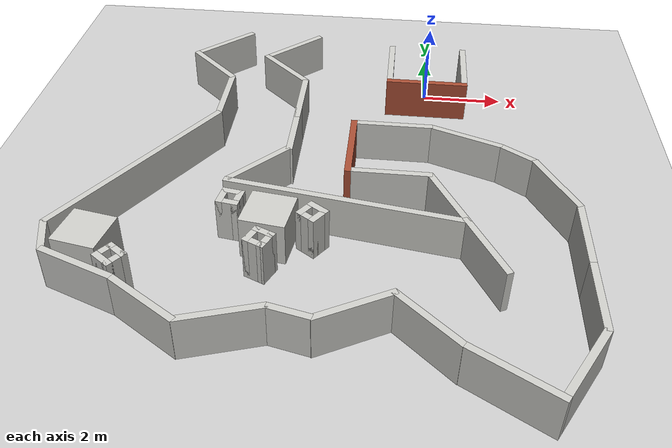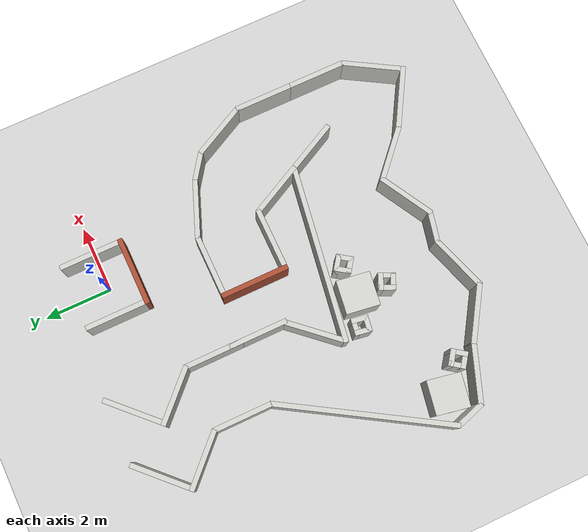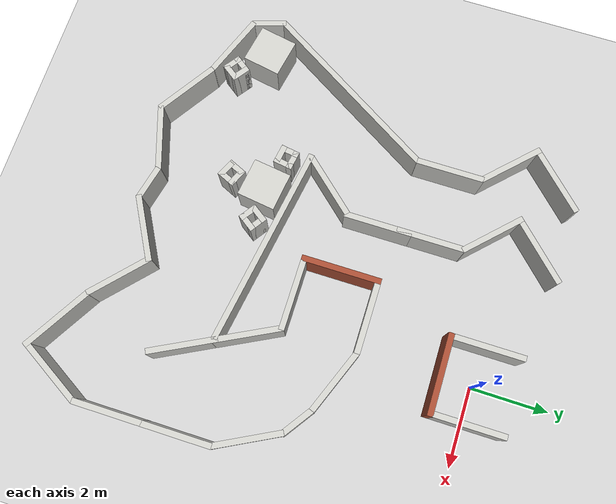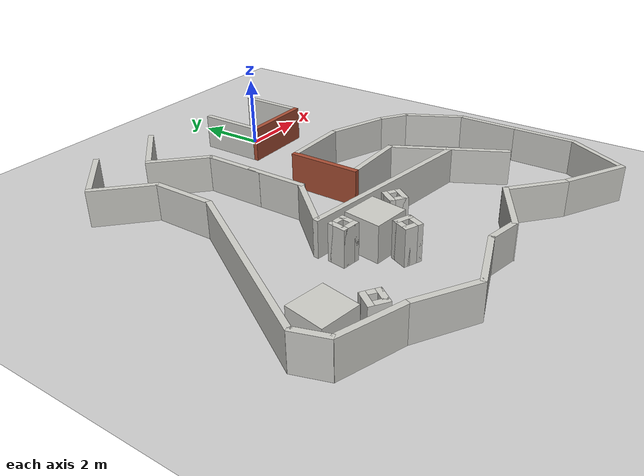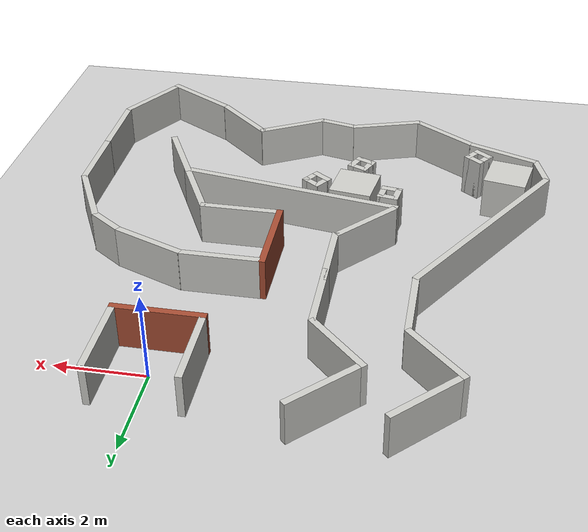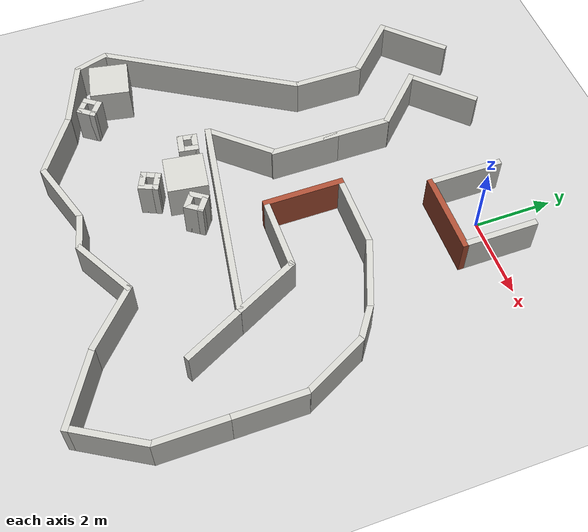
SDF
<sdf version="1.6">
 <world name="default">
  <model name="ground_plane">
   <static>1</static>
   <link name="link">
    <collision name="collision">
     <geometry><plane><normal>0 0 1</normal><size>100 100</size></plane></geometry>
     <surface><friction><ode><mu>100</mu><mu2>50</mu2></ode></friction></surface>
    </collision>
    <visual name="visual">
     <cast_shadows>0</cast_shadows>
     <geometry><plane><normal>0 0 1</normal><size>100 100</size></plane></geometry>
     <material>
      <script><uri>file://media/materials/scripts/concrete.material</uri><name>Concrete/1</name></script>
     </material>
    </visual>
   </link>
  </model>
  <model name="obstacle_wall_full_clone_0">
   <static>1</static>
   <pose>-5.51299 0.694344 0 0 0 -2.35619</pose>
   <link name="Wall">
    <collision name="Wall_Collision">
     <geometry><box><size>1.75 0.15 1</size></box></geometry>
     <pose>0 0 0.5 0 -0 0</pose>
    </collision>
    <visual name="Wall_Visual">
     <pose>0 0 0.5 0 -0 0</pose>
     <geometry><box><size>1.75 0.15 1</size></box></geometry>
     <material>
      <script><uri>file://media/materials/scripts/gazebo.material</uri><name>Gazebo/CeilingTiled</name></script>
      <ambient>1 0.764706 0.305882 1</ambient>
     </material>
    </visual>
   </link>
  </model>
  <model name="obstacle_wall_full_clone_0_clone">
   <static>1</static>
   <pose>-3.59715 0.686354 0 0 0 -2.35619</pose>
   <link name="Wall">
    <collision name="Wall_Collision">
     <geometry><box><size>1.75 0.15 1</size></box></geometry>
     <pose>0 0 0.5 0 -0 0</pose>
    </collision>
    <visual name="Wall_Visual">
     <pose>0 0 0.5 0 -0 0</pose>
     <geometry><box><size>1.75 0.15 1</size></box></geometry>
     <material>
      <script><uri>file://media/materials/scripts/gazebo.material</uri><name>Gazebo/CeilingTiled</name></script>
      <ambient>1 0.764706 0.305882 1</ambient>
     </material>
    </visual>
   </link>
  </model>
  <model name="obstacle_wall_full_clone_1">
   <static>1</static>
   <pose>-3.69711 -0.544465 0 0 0 -0.785398</pose>
   <link name="Wall">
    <collision name="Wall_Collision">
     <geometry><box><size>1.75 0.15 1</size></box></geometry>
     <pose>0 0 0.5 0 -0 0</pose>
    </collision>
    <visual name="Wall_Visual">
     <pose>0 0 0.5 0 -0 0</pose>
     <geometry><box><size>1.75 0.15 1</size></box></geometry>
     <material>
      <script><uri>file://media/materials/scripts/gazebo.material</uri><name>Gazebo/CeilingTiled</name></script>
      <ambient>1 0.764706 0.305882 1</ambient>
     </material>
    </visual>
   </link>
  </model>
  <model name="obstacle_wall_full_clone_2">
   <static>1</static>
   <pose>-5.6187 -0.542924 0 0 0 -0.785398</pose>
   <link name="Wall">
    <collision name="Wall_Collision">
     <geometry><box><size>1.75 0.15 1</size></box></geometry>
     <pose>0 0 0.5 0 -0 0</pose>
    </collision>
    <visual name="Wall_Visual">
     <pose>0 0 0.5 0 -0 0</pose>
     <geometry><box><size>1.75 0.15 1</size></box></geometry>
     <material>
      <script><uri>file://media/materials/scripts/gazebo.material</uri><name>Gazebo/CeilingTiled</name></script>
      <ambient>1 0.764706 0.305882 1</ambient>
     </material>
    </visual>
   </link>
  </model>
  <model name="track_straight_4">
   <static>1</static>
   <pose>-4.06097 -1.98727 0 0 -0 0</pose>
   <link name="Wall_1">
    <collision name="Wall_1_Collision">
     <geometry><box><size>1.75 0.15 1</size></box></geometry>
     <pose>0 0 0.5 0 -0 0</pose>
    </collision>
    <visual name="Wall_1_Visual">
     <pose>0 0 0.5 0 -0 0</pose>
     <geometry><box><size>1.75 0.15 1</size></box></geometry>
     <material>
      <script><uri>file://media/materials/scripts/gazebo.material</uri><name>Gazebo/CeilingTiled</name></script>
      <ambient>1 0.764706 0.305882 1</ambient>
     </material>
    </visual>
    <pose>-0.955 0.002 0 0 0 -1.5708</pose>
   </link>
   <link name="Wall_2">
    <collision name="Wall_2_Collision">
     <geometry><box><size>1.75 0.15 1</size></box></geometry>
     <pose>0 0 0.5 0 -0 0</pose>
    </collision>
    <visual name="Wall_2_Visual">
     <pose>0 0 0.5 0 -0 0</pose>
     <geometry><box><size>1.75 0.15 1</size></box></geometry>
     <material>
      <script><uri>file://media/materials/scripts/gazebo.material</uri><name>Gazebo/CeilingTiled</name></script>
      <ambient>1 0.764706 0.305882 1</ambient>
     </material>
    </visual>
    <pose>0.955 0.002 0 0 0 -1.5708</pose>
   </link>
  </model>
  <model name="track_wall_3">
   <static>1</static>
   <pose>-1.76727 -5.89244 0 0 0 -0.16061</pose>
   <link name="Wall">
    <collision name="Wall_Collision">
     <geometry><box><size>5.25 0.15 1</size></box></geometry>
     <pose>0 0 0.5 0 -0 0</pose>
    </collision>
    <visual name="Wall_Visual">
     <pose>0 0 0.5 0 -0 0</pose>
     <geometry><box><size>5.25 0.15 1</size></box></geometry>
     <material>
      <script><uri>file://media/materials/scripts/gazebo.material</uri><name>Gazebo/CeilingTiled</name></script>
      <ambient>1 0.764706 0.305882 1</ambient>
     </material>
    </visual>
   </link>
  </model>
  <model name="obstacle_wall_full_0">
   <static>1</static>
   <pose>3.19645 -8.15465 0 0 -0 1.5708</pose>
   <link name="Wall">
    <collision name="Wall_Collision">
     <geometry><box><size>1.75 0.15 1</size></box></geometry>
     <pose>0 0 0.5 0 -0 0</pose>
    </collision>
    <visual name="Wall_Visual">
     <pose>0 0 0.5 0 -0 0</pose>
     <geometry><box><size>1.75 0.15 1</size></box></geometry>
     <material>
      <script><uri>file://media/materials/scripts/gazebo.material</uri><name>Gazebo/CeilingTiled</name></script>
      <ambient>1 0.764706 0.305882 1</ambient>
     </material>
    </visual>
   </link>
  </model>
  <model name="track_corner_5">
   <static>1</static>
   <pose>1.96218 -9.35253 0 0 -0 2.60672</pose>
   <link name="Wall_1">
    <collision name="Wall_1_Collision">
     <geometry><box><size>1.75 0.15 1</size></box></geometry>
     <pose>0 0 0.5 0 -0 0</pose>
    </collision>
    <visual name="Wall_1_Visual">
     <pose>0 0 0.5 0 -0 0</pose>
     <geometry><box><size>1.75 0.15 1</size></box></geometry>
     <material>
      <script><uri>file://media/materials/scripts/gazebo.material</uri><name>Gazebo/CeilingTiled</name></script>
      <ambient>1 0.764706 0.305882 1</ambient>
     </material>
    </visual>
    <pose>-0.882493 -0.073007 0 0 0 -1.5708</pose>
   </link>
   <link name="Wall_2">
    <collision name="Wall_2_Collision">
     <geometry><box><size>1.91042 0.15 1</size></box></geometry>
     <pose>0 0 0.5 0 -0 0</pose>
    </collision>
    <visual name="Wall_2_Visual">
     <pose>0 0 0.5 0 -0 0</pose>
     <geometry><box><size>1.91042 0.15 1</size></box></geometry>
     <material>
      <script><uri>file://media/materials/scripts/gazebo.material</uri><name>Gazebo/CeilingTiled</name></script>
      <ambient>1 0.764706 0.305882 1</ambient>
     </material>
    </visual>
    <pose>-0.002284 0.876825 0 0 -0 3.1414</pose>
   </link>
  </model>
  <model name="obstacle_wall_full_1">
   <static>1</static>
   <pose>0.060788 -9.04545 0 0 0 -0.743151</pose>
   <link name="Wall">
    <collision name="Wall_Collision">
     <geometry><box><size>1.75 0.15 1</size></box></geometry>
     <pose>0 0 0.5 0 -0 0</pose>
    </collision>
    <visual name="Wall_Visual">
     <pose>0 0 0.5 0 -0 0</pose>
     <geometry><box><size>1.75 0.15 1</size></box></geometry>
     <material>
      <script><uri>file://media/materials/scripts/gazebo.material</uri><name>Gazebo/CeilingTiled</name></script>
      <ambient>1 0.764706 0.305882 1</ambient>
     </material>
    </visual>
   </link>
  </model>
  <model name="obstacle_wall_full_2">
   <static>1</static>
   <pose>-3.70961 -4.80867 0 0 -0 0.840666</pose>
   <link name="Wall">
    <collision name="Wall_Collision">
     <geometry><box><size>1.75 0.15 1</size></box></geometry>
     <pose>0 0 0.5 0 -0 0</pose>
    </collision>
    <visual name="Wall_Visual">
     <pose>0 0 0.5 0 -0 0</pose>
     <geometry><box><size>1.75 0.15 1</size></box></geometry>
     <material>
      <script><uri>file://media/materials/scripts/gazebo.material</uri><name>Gazebo/CeilingTiled</name></script>
      <ambient>1 0.764706 0.305882 1</ambient>
     </material>
    </visual>
   </link>
  </model>
  <model name="obstacle_wall_full_4">
   <static>1</static>
   <pose>-3.10411 -3.34624 0 0 0 -1.5708</pose>
   <link name="Wall">
    <collision name="Wall_Collision">
     <geometry><box><size>1.75 0.15 1</size></box></geometry>
     <pose>0 0 0.5 0 -0 0</pose>
    </collision>
    <visual name="Wall_Visual">
     <pose>0 0 0.5 0 -0 0</pose>
     <geometry><box><size>1.75 0.15 1</size></box></geometry>
     <material>
      <script><uri>file://media/materials/scripts/gazebo.material</uri><name>Gazebo/CeilingTiled</name></script>
      <ambient>1 0.764706 0.305882 1</ambient>
     </material>
    </visual>
   </link>
  </model>
  <model name="track_wall_3_2">
   <static>1</static>
   <pose>-6.36344 -5.07041 0 0 -0 1.02375</pose>
   <link name="Wall">
    <collision name="Wall_Collision">
     <geometry><box><size>5.25 0.15 1</size></box></geometry>
     <pose>0 0 0.5 0 -0 0</pose>
    </collision>
    <visual name="Wall_Visual">
     <pose>0 0 0.5 0 -0 0</pose>
     <geometry><box><size>5.25 0.15 1</size></box></geometry>
     <material>
      <script><uri>file://media/materials/scripts/gazebo.material</uri><name>Gazebo/CeilingTiled</name></script>
      <ambient>1 0.764706 0.305882 1</ambient>
     </material>
    </visual>
   </link>
  </model>
  <model name="obstacle_squarepillar_medium">
   <static>1</static>
   <pose>-4.09924 -6.06753 0 0 0 -0.15833</pose>
   <link name="Wall_1">
    <collision name="Wall_1_Collision">
     <geometry><box><size>0.5 0.15 1</size></box></geometry>
     <pose>0 0 0.5 0 -0 0</pose>
    </collision>
    <visual name="Wall_1_Visual">
     <pose>0 0 0.5 0 -0 0</pose>
     <geometry><box><size>0.5 0.15 1</size></box></geometry>
     <material>
      <script><uri>file://media/materials/scripts/gazebo.material</uri><name>Gazebo/CeilingTiled</name></script>
      <ambient>1 0.764706 0.305882 1</ambient>
     </material>
    </visual>
    <pose>-0.175 0 0 0 0 -1.5708</pose>
   </link>
   <link name="Wall_2">
    <collision name="Wall_2_Collision">
     <geometry><box><size>0.5 0.15 1</size></box></geometry>
     <pose>0 0 0.5 0 -0 0</pose>
    </collision>
    <visual name="Wall_2_Visual">
     <pose>0 0 0.5 0 -0 0</pose>
     <geometry><box><size>0.5 0.15 1</size></box></geometry>
     <material>
      <script><uri>file://media/materials/scripts/gazebo.material</uri><name>Gazebo/CeilingTiled</name></script>
      <ambient>1 0.764706 0.305882 1</ambient>
     </material>
    </visual>
    <pose>0 -0.175 0 0 -0 0</pose>
   </link>
   <link name="Wall_3">
    <collision name="Wall_3_Collision">
     <geometry><box><size>0.5 0.15 1</size></box></geometry>
     <pose>0 0 0.5 0 -0 0</pose>
    </collision>
    <visual name="Wall_3_Visual">
     <pose>0 0 0.5 0 -0 0</pose>
     <geometry><box><size>0.5 0.15 1</size></box></geometry>
     <material>
      <script><uri>file://media/materials/scripts/gazebo.material</uri><name>Gazebo/CeilingTiled</name></script>
      <ambient>1 0.764706 0.305882 1</ambient>
     </material>
    </visual>
    <pose>0.175 0 0 0 -0 1.5708</pose>
   </link>
   <link name="Wall_4">
    <collision name="Wall_4_Collision">
     <geometry><box><size>0.5 0.15 1</size></box></geometry>
     <pose>0 0 0.5 0 -0 0</pose>
    </collision>
    <visual name="Wall_4_Visual">
     <pose>0 0 0.5 0 -0 0</pose>
     <geometry><box><size>0.5 0.15 1</size></box></geometry>
     <material>
      <script><uri>file://media/materials/scripts/gazebo.material</uri><name>Gazebo/CeilingTiled</name></script>
      <ambient>1 0.764706 0.305882 1</ambient>
     </material>
    </visual>
    <pose>0 0.175 0 0 -0 3.14159</pose>
   </link>
  </model>
  <model name="obstacle_squarepillar_large">
   <pose>-3.23575 -6.38473 0 0 0 -0.139844</pose>
   <link name="Pillar">
    <collision name="Pillar_Collision">
     <geometry><box><size>1 1 1</size></box></geometry>
     <pose>0 0 0.5 0 -0 0</pose>
    </collision>
    <visual name="Pillar_Visual">
     <pose>0 0 0.5 0 -0 0</pose>
     <geometry><box><size>1 1 1</size></box></geometry>
     <material>
      <script><uri>file://media/materials/scripts/gazebo.material</uri><name>Gazebo/CeilingTiled</name></script>
      <ambient>1 0.764706 0.305882 1</ambient>
     </material>
    </visual>
   </link>
   <static>1</static>
  </model>
  <model name="obstacle_squarepillar_medium_clone">
   <static>1</static>
   <pose>-3.28236 -7.26643 0 0 0 -0.42369</pose>
   <link name="Wall_1">
    <collision name="Wall_1_Collision">
     <geometry><box><size>0.5 0.15 1</size></box></geometry>
     <pose>0 0 0.5 0 -0 0</pose>
    </collision>
    <visual name="Wall_1_Visual">
     <pose>0 0 0.5 0 -0 0</pose>
     <geometry><box><size>0.5 0.15 1</size></box></geometry>
     <material>
      <script><uri>file://media/materials/scripts/gazebo.material</uri><name>Gazebo/CeilingTiled</name></script>
      <ambient>1 0.764706 0.305882 1</ambient>
     </material>
    </visual>
    <pose>-0.175 0 0 0 0 -1.5708</pose>
   </link>
   <link name="Wall_2">
    <collision name="Wall_2_Collision">
     <geometry><box><size>0.5 0.15 1</size></box></geometry>
     <pose>0 0 0.5 0 -0 0</pose>
    </collision>
    <visual name="Wall_2_Visual">
     <pose>0 0 0.5 0 -0 0</pose>
     <geometry><box><size>0.5 0.15 1</size></box></geometry>
     <material>
      <script><uri>file://media/materials/scripts/gazebo.material</uri><name>Gazebo/CeilingTiled</name></script>
      <ambient>1 0.764706 0.305882 1</ambient>
     </material>
    </visual>
    <pose>0 -0.175 0 0 -0 0</pose>
   </link>
   <link name="Wall_3">
    <collision name="Wall_3_Collision">
     <geometry><box><size>0.5 0.15 1</size></box></geometry>
     <pose>0 0 0.5 0 -0 0</pose>
    </collision>
    <visual name="Wall_3_Visual">
     <pose>0 0 0.5 0 -0 0</pose>
     <geometry><box><size>0.5 0.15 1</size></box></geometry>
     <material>
      <script><uri>file://media/materials/scripts/gazebo.material</uri><name>Gazebo/CeilingTiled</name></script>
      <ambient>1 0.764706 0.305882 1</ambient>
     </material>
    </visual>
    <pose>0.175 0 0 0 -0 1.5708</pose>
   </link>
   <link name="Wall_4">
    <collision name="Wall_4_Collision">
     <geometry><box><size>0.5 0.15 1</size></box></geometry>
     <pose>0 0 0.5 0 -0 0</pose>
    </collision>
    <visual name="Wall_4_Visual">
     <pose>0 0 0.5 0 -0 0</pose>
     <geometry><box><size>0.5 0.15 1</size></box></geometry>
     <material>
      <script><uri>file://media/materials/scripts/gazebo.material</uri><name>Gazebo/CeilingTiled</name></script>
      <ambient>1 0.764706 0.305882 1</ambient>
     </material>
    </visual>
    <pose>0 0.175 0 0 -0 3.14159</pose>
   </link>
  </model>
  <model name="obstacle_squarepillar_medium_clone_0">
   <static>1</static>
   <pose>-2.31446 -6.37857 0 0 0 -0.61349</pose>
   <link name="Wall_1">
    <collision name="Wall_1_Collision">
     <geometry><box><size>0.5 0.15 1</size></box></geometry>
     <pose>0 0 0.5 0 -0 0</pose>
    </collision>
    <visual name="Wall_1_Visual">
     <pose>0 0 0.5 0 -0 0</pose>
     <geometry><box><size>0.5 0.15 1</size></box></geometry>
     <material>
      <script><uri>file://media/materials/scripts/gazebo.material</uri><name>Gazebo/CeilingTiled</name></script>
      <ambient>1 0.764706 0.305882 1</ambient>
     </material>
    </visual>
    <pose>-0.175 0 0 0 0 -1.5708</pose>
   </link>
   <link name="Wall_2">
    <collision name="Wall_2_Collision">
     <geometry><box><size>0.5 0.15 1</size></box></geometry>
     <pose>0 0 0.5 0 -0 0</pose>
    </collision>
    <visual name="Wall_2_Visual">
     <pose>0 0 0.5 0 -0 0</pose>
     <geometry><box><size>0.5 0.15 1</size></box></geometry>
     <material>
      <script><uri>file://media/materials/scripts/gazebo.material</uri><name>Gazebo/CeilingTiled</name></script>
      <ambient>1 0.764706 0.305882 1</ambient>
     </material>
    </visual>
    <pose>0 -0.175 0 0 -0 0</pose>
   </link>
   <link name="Wall_3">
    <collision name="Wall_3_Collision">
     <geometry><box><size>0.5 0.15 1</size></box></geometry>
     <pose>0 0 0.5 0 -0 0</pose>
    </collision>
    <visual name="Wall_3_Visual">
     <pose>0 0 0.5 0 -0 0</pose>
     <geometry><box><size>0.5 0.15 1</size></box></geometry>
     <material>
      <script><uri>file://media/materials/scripts/gazebo.material</uri><name>Gazebo/CeilingTiled</name></script>
      <ambient>1 0.764706 0.305882 1</ambient>
     </material>
    </visual>
    <pose>0.175 0 0 0 -0 1.5708</pose>
   </link>
   <link name="Wall_4">
    <collision name="Wall_4_Collision">
     <geometry><box><size>0.5 0.15 1</size></box></geometry>
     <pose>0 0 0.5 0 -0 0</pose>
    </collision>
    <visual name="Wall_4_Visual">
     <pose>0 0 0.5 0 -0 0</pose>
     <geometry><box><size>0.5 0.15 1</size></box></geometry>
     <material>
      <script><uri>file://media/materials/scripts/gazebo.material</uri><name>Gazebo/CeilingTiled</name></script>
      <ambient>1 0.764706 0.305882 1</ambient>
     </material>
    </visual>
    <pose>0 0.175 0 0 -0 3.14159</pose>
   </link>
  </model>
  <model name="obstacle_wall_full_5">
   <static>1</static>
   <pose>-5.14845 -9.15212 0 0 0 -0.576358</pose>
   <link name="Wall">
    <collision name="Wall_Collision">
     <geometry><box><size>1.75 0.15 1</size></box></geometry>
     <pose>0 0 0.5 0 -0 0</pose>
    </collision>
    <visual name="Wall_Visual">
     <pose>0 0 0.5 0 -0 0</pose>
     <geometry><box><size>1.75 0.15 1</size></box></geometry>
     <material>
      <script><uri>file://media/materials/scripts/gazebo.material</uri><name>Gazebo/CeilingTiled</name></script>
      <ambient>1 0.764706 0.305882 1</ambient>
     </material>
    </visual>
   </link>
  </model>
  <model name="obstacle_wall_full_6">
   <static>1</static>
   <pose>-1.26105 -8.89096 0 0 -0 0.505836</pose>
   <link name="Wall">
    <collision name="Wall_Collision">
     <geometry><box><size>1.75 0.15 1</size></box></geometry>
     <pose>0 0 0.5 0 -0 0</pose>
    </collision>
    <visual name="Wall_Visual">
     <pose>0 0 0.5 0 -0 0</pose>
     <geometry><box><size>1.75 0.15 1</size></box></geometry>
     <material>
      <script><uri>file://media/materials/scripts/gazebo.material</uri><name>Gazebo/CeilingTiled</name></script>
      <ambient>1 0.764706 0.305882 1</ambient>
     </material>
    </visual>
   </link>
  </model>
  <model name="obstacle_wall_full_7">
   <static>1</static>
   <pose>-6.67037 -8.37819 0 0 0 -0.363687</pose>
   <link name="Wall">
    <collision name="Wall_Collision">
     <geometry><box><size>1.75 0.15 1</size></box></geometry>
     <pose>0 0 0.5 0 -0 0</pose>
    </collision>
    <visual name="Wall_Visual">
     <pose>0 0 0.5 0 -0 0</pose>
     <geometry><box><size>1.75 0.15 1</size></box></geometry>
     <material>
      <script><uri>file://media/materials/scripts/gazebo.material</uri><name>Gazebo/CeilingTiled</name></script>
      <ambient>1 0.764706 0.305882 1</ambient>
     </material>
    </visual>
   </link>
  </model>
  <model name="obstacle_wall_short">
   <static>1</static>
   <pose>-7.58394 -7.68135 0 0 0 -1.26636</pose>
   <link name="Wall">
    <collision name="Wall_Collision">
     <geometry><box><size>0.9 0.15 1</size></box></geometry>
     <pose>0 0 0.5 0 -0 0</pose>
    </collision>
    <visual name="Wall_Visual">
     <pose>0 0 0.5 0 -0 0</pose>
     <geometry><box><size>0.9 0.15 1</size></box></geometry>
     <material>
      <script><uri>file://media/materials/scripts/gazebo.material</uri><name>Gazebo/CeilingTiled</name></script>
      <ambient>1 0.764706 0.305882 1</ambient>
     </material>
    </visual>
   </link>
  </model>
  <model name="obstacle_squarepillar_large_0">
   <pose>-6.82115 -7.40469 0 0 0 -0.18589</pose>
   <link name="Pillar">
    <collision name="Pillar_Collision">
     <geometry><box><size>1 1 1</size></box></geometry>
     <pose>0 0 0.5 0 -0 0</pose>
    </collision>
    <visual name="Pillar_Visual">
     <pose>0 0 0.5 0 -0 0</pose>
     <geometry><box><size>1 1 1</size></box></geometry>
     <material>
      <script><uri>file://media/materials/scripts/gazebo.material</uri><name>Gazebo/CeilingTiled</name></script>
      <ambient>1 0.764706 0.305882 1</ambient>
     </material>
    </visual>
   </link>
   <static>1</static>
  </model>
  <model name="obstacle_squarepillar_medium_clone_1">
   <static>1</static>
   <pose>-6.07379 -8.0919 0 0 0 -0.6325</pose>
   <link name="Wall_1">
    <collision name="Wall_1_Collision">
     <geometry><box><size>0.5 0.15 1</size></box></geometry>
     <pose>0 0 0.5 0 -0 0</pose>
    </collision>
    <visual name="Wall_1_Visual">
     <pose>0 0 0.5 0 -0 0</pose>
     <geometry><box><size>0.5 0.15 1</size></box></geometry>
     <material>
      <script><uri>file://media/materials/scripts/gazebo.material</uri><name>Gazebo/CeilingTiled</name></script>
      <ambient>1 0.764706 0.305882 1</ambient>
     </material>
    </visual>
    <pose>-0.175 0 0 0 0 -1.5708</pose>
   </link>
   <link name="Wall_2">
    <collision name="Wall_2_Collision">
     <geometry><box><size>0.5 0.15 1</size></box></geometry>
     <pose>0 0 0.5 0 -0 0</pose>
    </collision>
    <visual name="Wall_2_Visual">
     <pose>0 0 0.5 0 -0 0</pose>
     <geometry><box><size>0.5 0.15 1</size></box></geometry>
     <material>
      <script><uri>file://media/materials/scripts/gazebo.material</uri><name>Gazebo/CeilingTiled</name></script>
      <ambient>1 0.764706 0.305882 1</ambient>
     </material>
    </visual>
    <pose>0 -0.175 0 0 -0 0</pose>
   </link>
   <link name="Wall_3">
    <collision name="Wall_3_Collision">
     <geometry><box><size>0.5 0.15 1</size></box></geometry>
     <pose>0 0 0.5 0 -0 0</pose>
    </collision>
    <visual name="Wall_3_Visual">
     <pose>0 0 0.5 0 -0 0</pose>
     <geometry><box><size>0.5 0.15 1</size></box></geometry>
     <material>
      <script><uri>file://media/materials/scripts/gazebo.material</uri><name>Gazebo/CeilingTiled</name></script>
      <ambient>1 0.764706 0.305882 1</ambient>
     </material>
    </visual>
    <pose>0.175 0 0 0 -0 1.5708</pose>
   </link>
   <link name="Wall_4">
    <collision name="Wall_4_Collision">
     <geometry><box><size>0.5 0.15 1</size></box></geometry>
     <pose>0 0 0.5 0 -0 0</pose>
    </collision>
    <visual name="Wall_4_Visual">
     <pose>0 0 0.5 0 -0 0</pose>
     <geometry><box><size>0.5 0.15 1</size></box></geometry>
     <material>
      <script><uri>file://media/materials/scripts/gazebo.material</uri><name>Gazebo/CeilingTiled</name></script>
      <ambient>1 0.764706 0.305882 1</ambient>
     </material>
    </visual>
    <pose>0 0.175 0 0 -0 3.14159</pose>
   </link>
  </model>
  <model name="obstacle_wall_full_8">
   <static>1</static>
   <pose>-3.6459 -9.34833 0 0 -0 0.312283</pose>
   <link name="Wall">
    <collision name="Wall_Collision">
     <geometry><box><size>1.75 0.15 1</size></box></geometry>
     <pose>0 0 0.5 0 -0 0</pose>
    </collision>
    <visual name="Wall_Visual">
     <pose>0 0 0.5 0 -0 0</pose>
     <geometry><box><size>1.75 0.15 1</size></box></geometry>
     <material>
      <script><uri>file://media/materials/scripts/gazebo.material</uri><name>Gazebo/CeilingTiled</name></script>
      <ambient>1 0.764706 0.305882 1</ambient>
     </material>
    </visual>
   </link>
  </model>
  <model name="obstacle_wall_short_0">
   <static>1</static>
   <pose>-2.41375 -9.18902 0 0 0 -0.227758</pose>
   <link name="Wall">
    <collision name="Wall_Collision">
     <geometry><box><size>0.9 0.15 1</size></box></geometry>
     <pose>0 0 0.5 0 -0 0</pose>
    </collision>
    <visual name="Wall_Visual">
     <pose>0 0 0.5 0 -0 0</pose>
     <geometry><box><size>0.9 0.15 1</size></box></geometry>
     <material>
      <script><uri>file://media/materials/scripts/gazebo.material</uri><name>Gazebo/CeilingTiled</name></script>
      <ambient>1 0.764706 0.305882 1</ambient>
     </material>
    </visual>
   </link>
  </model>
  <model name="track_end">
   <static>1</static>
   <pose>0 3e-06 0 0 -0 3.14159</pose>
   <link name="Wall_1">
    <collision name="Wall_1_Collision">
     <geometry><box><size>1.8 0.15 1</size></box></geometry>
     <pose>0 0 0.5 0 -0 0</pose>
    </collision>
    <visual name="Wall_1_Visual">
     <pose>0 0 0.5 0 -0 0</pose>
     <geometry><box><size>1.8 0.15 1</size></box></geometry>
     <material>
      <script><uri>file://media/materials/scripts/gazebo.material</uri><name>Gazebo/CeilingTiled</name></script>
      <ambient>1 0.764706 0.305882 1</ambient>
     </material>
    </visual>
    <pose>-0.95 -0.065 0 0 0 -1.5708</pose>
   </link>
   <link name="Wall_2">
    <collision name="Wall_2_Collision">
     <geometry><box><size>1.8 0.15 1</size></box></geometry>
     <pose>0 0 0.5 0 -0 0</pose>
    </collision>
    <visual name="Wall_2_Visual">
     <pose>0 0 0.5 0 -0 0</pose>
     <geometry><box><size>1.8 0.15 1</size></box></geometry>
     <material>
      <script><uri>file://media/materials/scripts/gazebo.material</uri><name>Gazebo/CeilingTiled</name></script>
      <ambient>1 0.764706 0.305882 1</ambient>
     </material>
    </visual>
    <pose>0.95 -0.065 0 0 0 -1.5708</pose>
   </link>
   <link name="Wall_3">
    <collision name="Wall_3_Collision">
     <geometry><box><size>2.05 0.15 1.5</size></box></geometry>
     <pose>0 0 0.75 0 -0 0</pose>
    </collision>
    <visual name="Wall_3_Visual">
     <pose>0 0 0.5 0 -0 0</pose>
     <geometry><box><size>2.05 0.15 1</size></box></geometry>
     <material>
      <script><uri>file://media/materials/scripts/gazebo.material</uri><name>Gazebo/Bricks</name></script>
      <ambient>0.996078 0.47451 0.0196078 1</ambient>
     </material>
    </visual>
    <pose>0 0.89 0 0 -0 0</pose>
   </link>
  </model>
  <model name="track_end_0">
   <static>1</static>
   <pose>-0.823803 -3.8841 0 0 -0 1.5708</pose>
   <link name="Wall_1">
    <collision name="Wall_1_Collision">
     <geometry><box><size>1.8 0.15 1</size></box></geometry>
     <pose>0 0 0.5 0 -0 0</pose>
    </collision>
    <visual name="Wall_1_Visual">
     <pose>0 0 0.5 0 -0 0</pose>
     <geometry><box><size>1.8 0.15 1</size></box></geometry>
     <material>
      <script><uri>file://media/materials/scripts/gazebo.material</uri><name>Gazebo/CeilingTiled</name></script>
      <ambient>1 0.764706 0.305882 1</ambient>
     </material>
    </visual>
    <pose>-0.95 -0.065 0 0 0 -1.5708</pose>
   </link>
   <link name="Wall_2">
    <collision name="Wall_2_Collision">
     <geometry><box><size>1.8 0.15 1</size></box></geometry>
     <pose>0 0 0.5 0 -0 0</pose>
    </collision>
    <visual name="Wall_2_Visual">
     <pose>0 0 0.5 0 -0 0</pose>
     <geometry><box><size>1.8 0.15 1</size></box></geometry>
     <material>
      <script><uri>file://media/materials/scripts/gazebo.material</uri><name>Gazebo/CeilingTiled</name></script>
      <ambient>1 0.764706 0.305882 1</ambient>
     </material>
    </visual>
    <pose>0.95 -0.065 0 0 0 -1.5708</pose>
   </link>
   <link name="Wall_3">
    <collision name="Wall_3_Collision">
     <geometry><box><size>2.05 0.15 1.5</size></box></geometry>
     <pose>0 0 0.75 0 -0 0</pose>
    </collision>
    <visual name="Wall_3_Visual">
     <pose>0 0 0.5 0 -0 0</pose>
     <geometry><box><size>2.05 0.15 1</size></box></geometry>
     <material>
      <script><uri>file://media/materials/scripts/gazebo.material</uri><name>Gazebo/Bricks</name></script>
      <ambient>0.996078 0.47451 0.0196078 1</ambient>
     </material>
    </visual>
    <pose>0 0.89 0 0 -0 0</pose>
   </link>
  </model>
  <model name="obstacle_wall_full_3">
   <static>1</static>
   <pose>0.475443 -5.5719 0 0 0 -1.09749</pose>
   <link name="Wall">
    <collision name="Wall_Collision">
     <geometry><box><size>1.75 0.15 1</size></box></geometry>
     <pose>0 0 0.5 0 -0 0</pose>
    </collision>
    <visual name="Wall_Visual">
     <pose>0 0 0.5 0 -0 0</pose>
     <geometry><box><size>1.75 0.15 1</size></box></geometry>
     <material>
      <script><uri>file://media/materials/scripts/gazebo.material</uri><name>Gazebo/CeilingTiled</name></script>
      <ambient>1 0.764706 0.305882 1</ambient>
     </material>
    </visual>
   </link>
  </model>
  <model name="obstacle_wall_full_9">
   <static>1</static>
   <pose>0.91578 -3.24562 0 0 0 -0.374942</pose>
   <link name="Wall">
    <collision name="Wall_Collision">
     <geometry><box><size>1.75 0.15 1</size></box></geometry>
     <pose>0 0 0.5 0 -0 0</pose>
    </collision>
    <visual name="Wall_Visual">
     <pose>0 0 0.5 0 -0 0</pose>
     <geometry><box><size>1.75 0.15 1</size></box></geometry>
     <material>
      <script><uri>file://media/materials/scripts/gazebo.material</uri><name>Gazebo/CeilingTiled</name></script>
      <ambient>1 0.764706 0.305882 1</ambient>
     </material>
    </visual>
   </link>
  </model>
  <model name="obstacle_wall_full_10">
   <static>1</static>
   <pose>3.19724 -6.41414 0 0 0 -1.5708</pose>
   <link name="Wall">
    <collision name="Wall_Collision">
     <geometry><box><size>1.75 0.15 1</size></box></geometry>
     <pose>0 0 0.5 0 -0 0</pose>
    </collision>
    <visual name="Wall_Visual">
     <pose>0 0 0.5 0 -0 0</pose>
     <geometry><box><size>1.75 0.15 1</size></box></geometry>
     <material>
      <script><uri>file://media/materials/scripts/gazebo.material</uri><name>Gazebo/CeilingTiled</name></script>
      <ambient>1 0.764706 0.305882 1</ambient>
     </material>
    </visual>
   </link>
  </model>
  <model name="obstacle_wall_full_3_clone">
   <static>1</static>
   <pose>1.20334 -6.99705 0 0 0 -1.09749</pose>
   <link name="Wall">
    <collision name="Wall_Collision">
     <geometry><box><size>1.75 0.15 1</size></box></geometry>
     <pose>0 0 0.5 0 -0 0</pose>
    </collision>
    <visual name="Wall_Visual">
     <pose>0 0 0.5 0 -0 0</pose>
     <geometry><box><size>1.75 0.15 1</size></box></geometry>
     <material>
      <script><uri>file://media/materials/scripts/gazebo.material</uri><name>Gazebo/CeilingTiled</name></script>
      <ambient>1 0.764706 0.305882 1</ambient>
     </material>
    </visual>
   </link>
  </model>
  <model name="obstacle_wall_full_11">
   <static>1</static>
   <pose>2.80634 -4.81047 0 0 0 -1.09364</pose>
   <link name="Wall">
    <collision name="Wall_Collision">
     <geometry><box><size>1.75 0.15 1</size></box></geometry>
     <pose>0 0 0.5 0 -0 0</pose>
    </collision>
    <visual name="Wall_Visual">
     <pose>0 0 0.5 0 -0 0</pose>
     <geometry><box><size>1.75 0.15 1</size></box></geometry>
     <material>
      <script><uri>file://media/materials/scripts/gazebo.material</uri><name>Gazebo/CeilingTiled</name></script>
      <ambient>1 0.764706 0.305882 1</ambient>
     </material>
    </visual>
   </link>
  </model>
  <model name="obstacle_wall_short_1">
   <static>1</static>
   <pose>2.08243 -3.81871 0 0 0 -0.612113</pose>
   <link name="Wall">
    <collision name="Wall_Collision">
     <geometry><box><size>0.9 0.15 1</size></box></geometry>
     <pose>0 0 0.5 0 -0 0</pose>
    </collision>
    <visual name="Wall_Visual">
     <pose>0 0 0.5 0 -0 0</pose>
     <geometry><box><size>0.9 0.15 1</size></box></geometry>
     <material>
      <script><uri>file://media/materials/scripts/gazebo.material</uri><name>Gazebo/CeilingTiled</name></script>
      <ambient>1 0.764706 0.305882 1</ambient>
     </material>
    </visual>
   </link>
  </model>
 </world>
</sdf>
